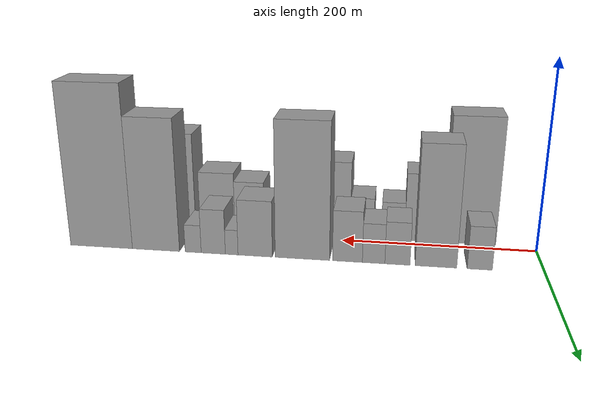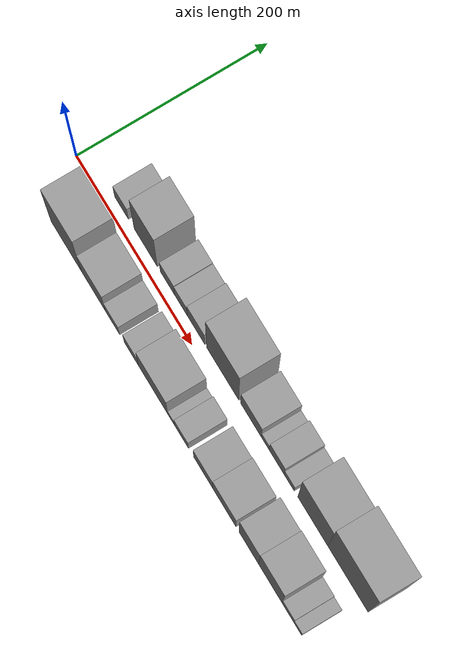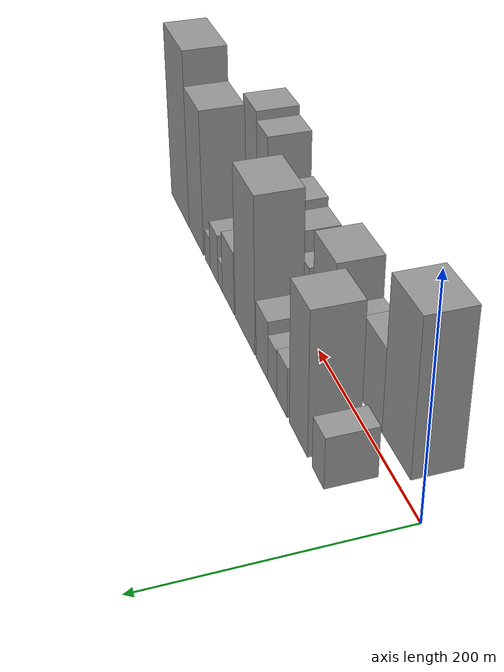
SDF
<sdf version="1.6">
 <world name="default">
  <scene>
   <sky><clouds><speed>12</speed></clouds></sky>
   <ambient>0.4 0.4 0.4 1</ambient>
   <background>0.7 0.7 0.7 1</background>
   <shadows>1</shadows>
  </scene>
  <gravity>0 0 -9.8066</gravity>
  <magnetic_field>6e-06 2.3e-05 -4.2e-05</magnetic_field>
  <physics default="0" name="default_physics" type="ode">
   <ode>
    <solver>
     <type>quick</type>
     <iters>10</iters>
     <sor>1.0</sor>
     <use_dynamic_moi_rescaling>0</use_dynamic_moi_rescaling>
    </solver>
    <constraints>
     <cfm>0</cfm>
     <erp>0.2</erp>
     <contact_max_correcting_vel>100</contact_max_correcting_vel>
     <contact_surface_layer>0.001</contact_surface_layer>
    </constraints>
   </ode>
   <max_step_size>0.004</max_step_size>
   <real_time_factor>1</real_time_factor>
   <real_time_update_rate>250</real_time_update_rate>
  </physics>
  <light name="sun" type="directional">
   <pose>0 0 10 0 0 0</pose>
   <diffuse>0.8 0.8 0.8 1</diffuse>
   <specular>0.2 0.2 0.2 1</specular>
   <attenuation>
    <range>1000</range>
    <constant>0.9</constant>
    <linear>0.01</linear>
    <quadratic>0.001</quadratic>
   </attenuation>
   <direction>-0.5 0.1 -0.9</direction>
  </light>
  <model name="building_1">
   <static>1</static>
   <pose>61.9903 30.0000 0 0.000000 0.000000 1.570796</pose>
   <link name="link">
    <pose>0 0 22.50 0 0 0</pose>
    <collision name="collision"><geometry><box><size>40.0000 23.9806 45.0000</size></box></geometry></collision>
    <visual name="visual">
     <cast_shadows>0</cast_shadows>
     <geometry><box><size>40.0000 23.9806 45.0000</size></box></geometry>
     <material>
      <script>
       <uri>model://grey_wall/materials/scripts</uri>
       <uri>model://grey_wall/materials/textures</uri>
       <name>vrc/grey_wall</name>
      </script>
     </material>
    </visual>
   </link>
  </model>
  <model name="building_2">
   <static>1</static>
   <pose>104.1201 30.0000 0 0.000000 0.000000 1.570796</pose>
   <link name="link">
    <pose>0 0 63.00 0 0 0</pose>
    <collision name="collision"><geometry><box><size>40.0000 40.2789 126.0000</size></box></geometry></collision>
    <visual name="visual">
     <cast_shadows>0</cast_shadows>
     <geometry><box><size>40.0000 40.2789 126.0000</size></box></geometry>
     <material>
      <script>
       <uri>model://grey_wall/materials/scripts</uri>
       <uri>model://grey_wall/materials/textures</uri>
       <name>vrc/grey_wall</name>
      </script>
     </material>
    </visual>
   </link>
  </model>
  <model name="building_3">
   <static>1</static>
   <pose>141.6000 30.0000 0 0.000000 0.000000 1.570796</pose>
   <link name="link">
    <pose>0 0 22.50 0 0 0</pose>
    <collision name="collision"><geometry><box><size>40.0000 24.6809 45.0000</size></box></geometry></collision>
    <visual name="visual">
     <cast_shadows>0</cast_shadows>
     <geometry><box><size>40.0000 24.6809 45.0000</size></box></geometry>
     <material>
      <script>
       <uri>model://grey_wall/materials/scripts</uri>
       <uri>model://grey_wall/materials/textures</uri>
       <name>vrc/grey_wall</name>
      </script>
     </material>
    </visual>
   </link>
  </model>
  <model name="building_4">
   <static>1</static>
   <pose>165.0783 30.0000 0 0.000000 0.000000 1.570796</pose>
   <link name="link">
    <pose>0 0 21.00 0 0 0</pose>
    <collision name="collision"><geometry><box><size>40.0000 22.2758 42.0000</size></box></geometry></collision>
    <visual name="visual">
     <cast_shadows>0</cast_shadows>
     <geometry><box><size>40.0000 22.2758 42.0000</size></box></geometry>
     <material>
      <script>
       <uri>model://grey_wall/materials/scripts</uri>
       <uri>model://grey_wall/materials/textures</uri>
       <name>vrc/grey_wall</name>
      </script>
     </material>
    </visual>
   </link>
  </model>
  <model name="building_5">
   <static>1</static>
   <pose>191.0973 30.0000 0 0.000000 0.000000 1.570796</pose>
   <link name="link">
    <pose>0 0 27.00 0 0 0</pose>
    <collision name="collision"><geometry><box><size>40.0000 29.7621 54.0000</size></box></geometry></collision>
    <visual name="visual">
     <cast_shadows>0</cast_shadows>
     <geometry><box><size>40.0000 29.7621 54.0000</size></box></geometry>
     <material>
      <script>
       <uri>model://grey_wall/materials/scripts</uri>
       <uri>model://grey_wall/materials/textures</uri>
       <name>vrc/grey_wall</name>
      </script>
     </material>
    </visual>
   </link>
  </model>
  <model name="building_6">
   <static>1</static>
   <pose>236.5478 30.0000 0 0.000000 0.000000 1.570796</pose>
   <link name="link">
    <pose>0 0 72.00 0 0 0</pose>
    <collision name="collision"><geometry><box><size>40.0000 55.1391 144.0000</size></box></geometry></collision>
    <visual name="visual">
     <cast_shadows>0</cast_shadows>
     <geometry><box><size>40.0000 55.1391 144.0000</size></box></geometry>
     <material>
      <script>
       <uri>model://grey_wall/materials/scripts</uri>
       <uri>model://grey_wall/materials/textures</uri>
       <name>vrc/grey_wall</name>
      </script>
     </material>
    </visual>
   </link>
  </model>
  <model name="building_7">
   <static>1</static>
   <pose>284.7847 30.0000 0 0.000000 0.000000 1.570796</pose>
   <link name="link">
    <pose>0 0 30.00 0 0 0</pose>
    <collision name="collision"><geometry><box><size>40.0000 35.3346 60.0000</size></box></geometry></collision>
    <visual name="visual">
     <cast_shadows>0</cast_shadows>
     <geometry><box><size>40.0000 35.3346 60.0000</size></box></geometry>
     <material>
      <script>
       <uri>model://grey_wall/materials/scripts</uri>
       <uri>model://grey_wall/materials/textures</uri>
       <name>vrc/grey_wall</name>
      </script>
     </material>
    </visual>
   </link>
  </model>
  <model name="building_8">
   <static>1</static>
   <pose>309.0534 30.0000 0 0.000000 0.000000 1.570796</pose>
   <link name="link">
    <pose>0 0 13.50 0 0 0</pose>
    <collision name="collision"><geometry><box><size>40.0000 13.2028 27.0000</size></box></geometry></collision>
    <visual name="visual">
     <cast_shadows>0</cast_shadows>
     <geometry><box><size>40.0000 13.2028 27.0000</size></box></geometry>
     <material>
      <script>
       <uri>model://grey_wall/materials/scripts</uri>
       <uri>model://grey_wall/materials/textures</uri>
       <name>vrc/grey_wall</name>
      </script>
     </material>
    </visual>
   </link>
  </model>
  <model name="building_9">
   <static>1</static>
   <pose>328.2975 30.0000 0 0.000000 0.000000 1.570796</pose>
   <link name="link">
    <pose>0 0 24.00 0 0 0</pose>
    <collision name="collision"><geometry><box><size>40.0000 25.2855 48.0000</size></box></geometry></collision>
    <visual name="visual">
     <cast_shadows>0</cast_shadows>
     <geometry><box><size>40.0000 25.2855 48.0000</size></box></geometry>
     <material>
      <script>
       <uri>model://grey_wall/materials/scripts</uri>
       <uri>model://grey_wall/materials/textures</uri>
       <name>vrc/grey_wall</name>
      </script>
     </material>
    </visual>
   </link>
  </model>
  <model name="building_10">
   <static>1</static>
   <pose>349.3878 30.0000 0 0.000000 0.000000 1.570796</pose>
   <link name="link">
    <pose>0 0 15.00 0 0 0</pose>
    <collision name="collision"><geometry><box><size>40.0000 16.8951 30.0000</size></box></geometry></collision>
    <visual name="visual">
     <cast_shadows>0</cast_shadows>
     <geometry><box><size>40.0000 16.8951 30.0000</size></box></geometry>
     <material>
      <script>
       <uri>model://grey_wall/materials/scripts</uri>
       <uri>model://grey_wall/materials/textures</uri>
       <name>vrc/grey_wall</name>
      </script>
     </material>
    </visual>
   </link>
  </model>
  <model name="building_11">
   <static>1</static>
   <pose>389.0252 30.0000 0 0.000000 0.000000 1.570796</pose>
   <link name="link">
    <pose>0 0 70.50 0 0 0</pose>
    <collision name="collision"><geometry><box><size>40.0000 50.3797 141.0000</size></box></geometry></collision>
    <visual name="visual">
     <cast_shadows>0</cast_shadows>
     <geometry><box><size>40.0000 50.3797 141.0000</size></box></geometry>
     <material>
      <script>
       <uri>model://grey_wall/materials/scripts</uri>
       <uri>model://grey_wall/materials/textures</uri>
       <name>vrc/grey_wall</name>
      </script>
     </material>
    </visual>
   </link>
  </model>
  <model name="building_12">
   <static>1</static>
   <pose>447.8136 30.0000 0 0.000000 0.000000 1.570796</pose>
   <link name="link">
    <pose>0 0 87.00 0 0 0</pose>
    <collision name="collision"><geometry><box><size>40.0000 67.1970 174.0000</size></box></geometry></collision>
    <visual name="visual">
     <cast_shadows>0</cast_shadows>
     <geometry><box><size>40.0000 67.1970 174.0000</size></box></geometry>
     <material>
      <script>
       <uri>model://grey_wall/materials/scripts</uri>
       <uri>model://grey_wall/materials/textures</uri>
       <name>vrc/grey_wall</name>
      </script>
     </material>
    </visual>
   </link>
  </model>
  <model name="building_13">
   <static>1</static>
   <pose>66.2596 -30.0000 0 0.000000 0.000000 1.570796</pose>
   <link name="link">
    <pose>0 0 69.00 0 0 0</pose>
    <collision name="collision"><geometry><box><size>40.0000 52.5192 138.0000</size></box></geometry></collision>
    <visual name="visual">
     <cast_shadows>0</cast_shadows>
     <geometry><box><size>40.0000 52.5192 138.0000</size></box></geometry>
     <material>
      <script>
       <uri>model://grey_wall/materials/scripts</uri>
       <uri>model://grey_wall/materials/textures</uri>
       <name>vrc/grey_wall</name>
      </script>
     </material>
    </visual>
   </link>
  </model>
  <model name="building_14">
   <static>1</static>
   <pose>113.6524 -30.0000 0 0.000000 0.000000 1.570796</pose>
   <link name="link">
    <pose>0 0 37.50 0 0 0</pose>
    <collision name="collision"><geometry><box><size>40.0000 42.2664 75.0000</size></box></geometry></collision>
    <visual name="visual">
     <cast_shadows>0</cast_shadows>
     <geometry><box><size>40.0000 42.2664 75.0000</size></box></geometry>
     <material>
      <script>
       <uri>model://grey_wall/materials/scripts</uri>
       <uri>model://grey_wall/materials/textures</uri>
       <name>vrc/grey_wall</name>
      </script>
     </material>
    </visual>
   </link>
  </model>
  <model name="building_15">
   <static>1</static>
   <pose>147.1516 -30.0000 0 0.000000 0.000000 1.570796</pose>
   <link name="link">
    <pose>0 0 21.00 0 0 0</pose>
    <collision name="collision"><geometry><box><size>40.0000 24.7319 42.0000</size></box></geometry></collision>
    <visual name="visual">
     <cast_shadows>0</cast_shadows>
     <geometry><box><size>40.0000 24.7319 42.0000</size></box></geometry>
     <material>
      <script>
       <uri>model://grey_wall/materials/scripts</uri>
       <uri>model://grey_wall/materials/textures</uri>
       <name>vrc/grey_wall</name>
      </script>
     </material>
    </visual>
   </link>
  </model>
  <model name="building_16">
   <static>1</static>
   <pose>180.0183 -30.0000 0 0.000000 0.000000 1.570796</pose>
   <link name="link">
    <pose>0 0 22.50 0 0 0</pose>
    <collision name="collision"><geometry><box><size>40.0000 25.0017 45.0000</size></box></geometry></collision>
    <visual name="visual">
     <cast_shadows>0</cast_shadows>
     <geometry><box><size>40.0000 25.0017 45.0000</size></box></geometry>
     <material>
      <script>
       <uri>model://grey_wall/materials/scripts</uri>
       <uri>model://grey_wall/materials/textures</uri>
       <name>vrc/grey_wall</name>
      </script>
     </material>
    </visual>
   </link>
  </model>
  <model name="building_17">
   <static>1</static>
   <pose>217.6344 -30.0000 0 0.000000 0.000000 1.570796</pose>
   <link name="link">
    <pose>0 0 42.00 0 0 0</pose>
    <collision name="collision"><geometry><box><size>40.0000 50.2303 84.0000</size></box></geometry></collision>
    <visual name="visual">
     <cast_shadows>0</cast_shadows>
     <geometry><box><size>40.0000 50.2303 84.0000</size></box></geometry>
     <material>
      <script>
       <uri>model://grey_wall/materials/scripts</uri>
       <uri>model://grey_wall/materials/textures</uri>
       <name>vrc/grey_wall</name>
      </script>
     </material>
    </visual>
   </link>
  </model>
  <model name="building_18">
   <static>1</static>
   <pose>248.3759 -30.0000 0 0.000000 0.000000 1.570796</pose>
   <link name="link">
    <pose>0 0 12.00 0 0 0</pose>
    <collision name="collision"><geometry><box><size>40.0000 11.2528 24.0000</size></box></geometry></collision>
    <visual name="visual">
     <cast_shadows>0</cast_shadows>
     <geometry><box><size>40.0000 11.2528 24.0000</size></box></geometry>
     <material>
      <script>
       <uri>model://grey_wall/materials/scripts</uri>
       <uri>model://grey_wall/materials/textures</uri>
       <name>vrc/grey_wall</name>
      </script>
     </material>
    </visual>
   </link>
  </model>
  <model name="building_19">
   <static>1</static>
   <pose>265.8201 -30.0000 0 0.000000 0.000000 1.570796</pose>
   <link name="link">
    <pose>0 0 21.00 0 0 0</pose>
    <collision name="collision"><geometry><box><size>40.0000 23.6355 42.0000</size></box></geometry></collision>
    <visual name="visual">
     <cast_shadows>0</cast_shadows>
     <geometry><box><size>40.0000 23.6355 42.0000</size></box></geometry>
     <material>
      <script>
       <uri>model://grey_wall/materials/scripts</uri>
       <uri>model://grey_wall/materials/textures</uri>
       <name>vrc/grey_wall</name>
      </script>
     </material>
    </visual>
   </link>
  </model>
  <model name="building_20">
   <static>1</static>
   <pose>302.9723 -30.0000 0 0.000000 0.000000 1.570796</pose>
   <link name="link">
    <pose>0 0 28.50 0 0 0</pose>
    <collision name="collision"><geometry><box><size>40.0000 32.6688 57.0000</size></box></geometry></collision>
    <visual name="visual">
     <cast_shadows>0</cast_shadows>
     <geometry><box><size>40.0000 32.6688 57.0000</size></box></geometry>
     <material>
      <script>
       <uri>model://grey_wall/materials/scripts</uri>
       <uri>model://grey_wall/materials/textures</uri>
       <name>vrc/grey_wall</name>
      </script>
     </material>
    </visual>
   </link>
  </model>
  <model name="building_21">
   <static>1</static>
   <pose>338.8002 -30.0000 0 0.000000 0.000000 1.570796</pose>
   <link name="link">
    <pose>0 0 33.00 0 0 0</pose>
    <collision name="collision"><geometry><box><size>40.0000 38.9869 66.0000</size></box></geometry></collision>
    <visual name="visual">
     <cast_shadows>0</cast_shadows>
     <geometry><box><size>40.0000 38.9869 66.0000</size></box></geometry>
     <material>
      <script>
       <uri>model://grey_wall/materials/scripts</uri>
       <uri>model://grey_wall/materials/textures</uri>
       <name>vrc/grey_wall</name>
      </script>
     </material>
    </visual>
   </link>
  </model>
  <model name="building_22">
   <static>1</static>
   <pose>379.9367 -30.0000 0 0.000000 0.000000 1.570796</pose>
   <link name="link">
    <pose>0 0 54.00 0 0 0</pose>
    <collision name="collision"><geometry><box><size>40.0000 33.2862 108.0000</size></box></geometry></collision>
    <visual name="visual">
     <cast_shadows>0</cast_shadows>
     <geometry><box><size>40.0000 33.2862 108.0000</size></box></geometry>
     <material>
      <script>
       <uri>model://grey_wall/materials/scripts</uri>
       <uri>model://grey_wall/materials/textures</uri>
       <name>vrc/grey_wall</name>
      </script>
     </material>
    </visual>
   </link>
  </model>
  <model name="building_23">
   <static>1</static>
   <pose>416.2277 -30.0000 0 0.000000 0.000000 1.570796</pose>
   <link name="link">
    <pose>0 0 58.50 0 0 0</pose>
    <collision name="collision"><geometry><box><size>40.0000 39.2958 117.0000</size></box></geometry></collision>
    <visual name="visual">
     <cast_shadows>0</cast_shadows>
     <geometry><box><size>40.0000 39.2958 117.0000</size></box></geometry>
     <material>
      <script>
       <uri>model://grey_wall/materials/scripts</uri>
       <uri>model://grey_wall/materials/textures</uri>
       <name>vrc/grey_wall</name>
      </script>
     </material>
    </visual>
   </link>
  </model>
  <model name="building_24">
   <static>1</static>
   <pose>445.6363 -30.0000 0 0.000000 0.000000 1.570796</pose>
   <link name="link">
    <pose>0 0 18.00 0 0 0</pose>
    <collision name="collision"><geometry><box><size>40.0000 19.5213 36.0000</size></box></geometry></collision>
    <visual name="visual">
     <cast_shadows>0</cast_shadows>
     <geometry><box><size>40.0000 19.5213 36.0000</size></box></geometry>
     <material>
      <script>
       <uri>model://grey_wall/materials/scripts</uri>
       <uri>model://grey_wall/materials/textures</uri>
       <name>vrc/grey_wall</name>
      </script>
     </material>
    </visual>
   </link>
  </model>
  <model name="building_25">
   <static>1</static>
   <pose>462.0135 -30.0000 0 0.000000 0.000000 1.570796</pose>
   <link name="link">
    <pose>0 0 13.50 0 0 0</pose>
    <collision name="collision"><geometry><box><size>40.0000 13.2332 27.0000</size></box></geometry></collision>
    <visual name="visual">
     <cast_shadows>0</cast_shadows>
     <geometry><box><size>40.0000 13.2332 27.0000</size></box></geometry>
     <material>
      <script>
       <uri>model://grey_wall/materials/scripts</uri>
       <uri>model://grey_wall/materials/textures</uri>
       <name>vrc/grey_wall</name>
      </script>
     </material>
    </visual>
   </link>
  </model>
 </world>
</sdf>
